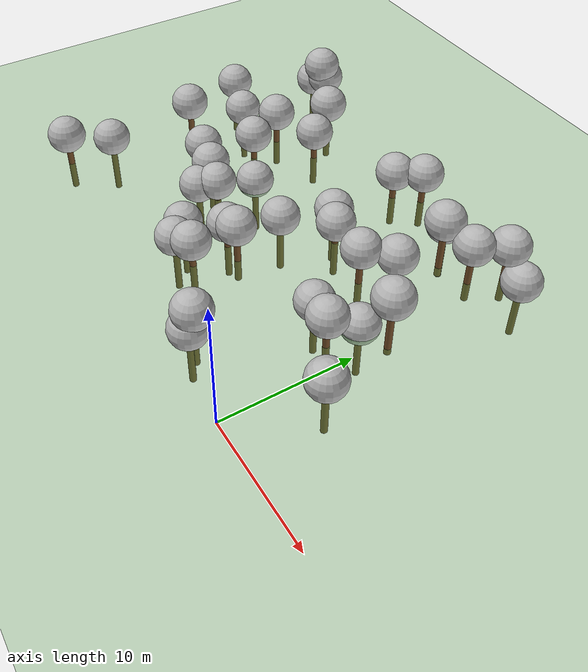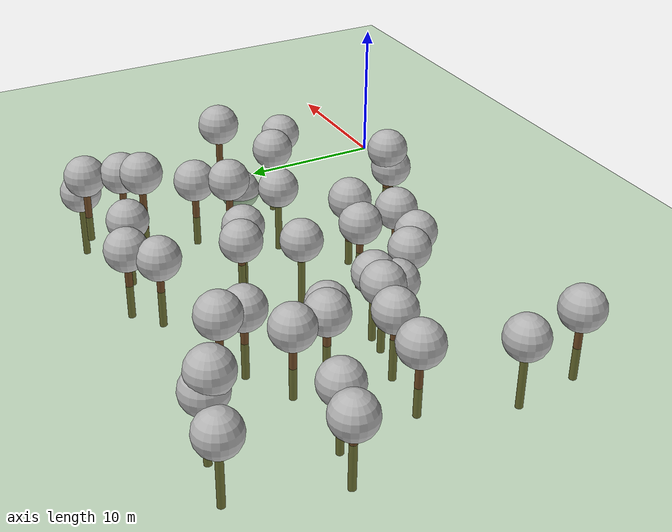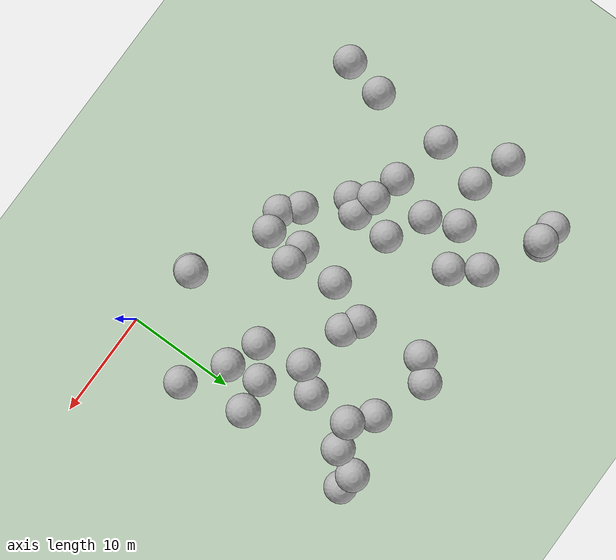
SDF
<sdf version="1.7">
 <world name="default">
  <model name="tree_simple498">
   <static>1</static>
   <link name="link">
    <pose>0 0 0.1 0 -0 0</pose>
    <collision name="collision_trunk">
     <pose>0 0 2 0 -0 0</pose>
     <geometry><cylinder><radius>0.25</radius><length>4</length></cylinder></geometry>
    </collision>
    <collision name="collision_treetop">
     <pose>0 0 5.2 0 -0 0</pose>
     <geometry><sphere><radius>1.5</radius></sphere></geometry>
    </collision>
    <visual name="trunk">
     <pose>0 0 2 0 -0 0</pose>
     <geometry><cylinder><radius>0.25</radius><length>4</length></cylinder></geometry>
     <material>
      <script>
       <uri>model://tree_simple/scripts</uri>
       <uri>model://tree_simple/materials/textures</uri>
       <name>TreeSimple/Trunk</name>
      </script>
     </material>
    </visual>
    <visual name="treetop">
     <pose>0 0 5.2 0 -0 0</pose>
     <geometry><sphere><radius>1.5</radius></sphere></geometry>
     <material>
      <script>
       <uri>model://tree_simple/scripts</uri>
       <uri>model://tree_simple/materials/textures</uri>
       <name>TreeSimple/Treetop</name>
      </script>
     </material>
    </visual>
   </link>
   <pose>-20.0621 9.09254 -3.97769 0 -0 0</pose>
  </model>
  <model name="tree_simple493">
   <static>1</static>
   <link name="link">
    <pose>0 0 0.1 0 -0 0</pose>
    <collision name="collision_trunk">
     <pose>0 0 2 0 -0 0</pose>
     <geometry><cylinder><radius>0.25</radius><length>4</length></cylinder></geometry>
    </collision>
    <collision name="collision_treetop">
     <pose>0 0 5.2 0 -0 0</pose>
     <geometry><sphere><radius>1.5</radius></sphere></geometry>
    </collision>
    <visual name="trunk">
     <pose>0 0 2 0 -0 0</pose>
     <geometry><cylinder><radius>0.25</radius><length>4</length></cylinder></geometry>
     <material>
      <script>
       <uri>model://tree_simple/scripts</uri>
       <uri>model://tree_simple/materials/textures</uri>
       <name>TreeSimple/Trunk</name>
      </script>
     </material>
    </visual>
    <visual name="treetop">
     <pose>0 0 5.2 0 -0 0</pose>
     <geometry><sphere><radius>1.5</radius></sphere></geometry>
     <material>
      <script>
       <uri>model://tree_simple/scripts</uri>
       <uri>model://tree_simple/materials/textures</uri>
       <name>TreeSimple/Treetop</name>
      </script>
     </material>
    </visual>
   </link>
   <pose>-30.9686 18.3944 -3.40292 0 -0 0</pose>
  </model>
  <model name="tree_simple488">
   <static>1</static>
   <link name="link">
    <pose>0 0 0.1 0 -0 0</pose>
    <collision name="collision_trunk">
     <pose>0 0 2 0 -0 0</pose>
     <geometry><cylinder><radius>0.25</radius><length>4</length></cylinder></geometry>
    </collision>
    <collision name="collision_treetop">
     <pose>0 0 5.2 0 -0 0</pose>
     <geometry><sphere><radius>1.5</radius></sphere></geometry>
    </collision>
    <visual name="trunk">
     <pose>0 0 2 0 -0 0</pose>
     <geometry><cylinder><radius>0.25</radius><length>4</length></cylinder></geometry>
     <material>
      <script>
       <uri>model://tree_simple/scripts</uri>
       <uri>model://tree_simple/materials/textures</uri>
       <name>TreeSimple/Trunk</name>
      </script>
     </material>
    </visual>
    <visual name="treetop">
     <pose>0 0 5.2 0 -0 0</pose>
     <geometry><sphere><radius>1.5</radius></sphere></geometry>
     <material>
      <script>
       <uri>model://tree_simple/scripts</uri>
       <uri>model://tree_simple/materials/textures</uri>
       <name>TreeSimple/Treetop</name>
      </script>
     </material>
    </visual>
   </link>
   <pose>-13.1216 12.436 -3.68606 0 -0 0</pose>
  </model>
  <model name="tree_simple480">
   <static>1</static>
   <link name="link">
    <pose>0 0 0.1 0 -0 0</pose>
    <collision name="collision_trunk">
     <pose>0 0 2 0 -0 0</pose>
     <geometry><cylinder><radius>0.25</radius><length>4</length></cylinder></geometry>
    </collision>
    <collision name="collision_treetop">
     <pose>0 0 5.2 0 -0 0</pose>
     <geometry><sphere><radius>1.5</radius></sphere></geometry>
    </collision>
    <visual name="trunk">
     <pose>0 0 2 0 -0 0</pose>
     <geometry><cylinder><radius>0.25</radius><length>4</length></cylinder></geometry>
     <material>
      <script>
       <uri>model://tree_simple/scripts</uri>
       <uri>model://tree_simple/materials/textures</uri>
       <name>TreeSimple/Trunk</name>
      </script>
     </material>
    </visual>
    <visual name="treetop">
     <pose>0 0 5.2 0 -0 0</pose>
     <geometry><sphere><radius>1.5</radius></sphere></geometry>
     <material>
      <script>
       <uri>model://tree_simple/scripts</uri>
       <uri>model://tree_simple/materials/textures</uri>
       <name>TreeSimple/Treetop</name>
      </script>
     </material>
    </visual>
   </link>
   <pose>-2.16211 12.1351 -5.1352 0 -0 0</pose>
  </model>
  <model name="tree_simple479">
   <static>1</static>
   <link name="link">
    <pose>0 0 0.1 0 -0 0</pose>
    <collision name="collision_trunk">
     <pose>0 0 2 0 -0 0</pose>
     <geometry><cylinder><radius>0.25</radius><length>4</length></cylinder></geometry>
    </collision>
    <collision name="collision_treetop">
     <pose>0 0 5.2 0 -0 0</pose>
     <geometry><sphere><radius>1.5</radius></sphere></geometry>
    </collision>
    <visual name="trunk">
     <pose>0 0 2 0 -0 0</pose>
     <geometry><cylinder><radius>0.25</radius><length>4</length></cylinder></geometry>
     <material>
      <script>
       <uri>model://tree_simple/scripts</uri>
       <uri>model://tree_simple/materials/textures</uri>
       <name>TreeSimple/Trunk</name>
      </script>
     </material>
    </visual>
    <visual name="treetop">
     <pose>0 0 5.2 0 -0 0</pose>
     <geometry><sphere><radius>1.5</radius></sphere></geometry>
     <material>
      <script>
       <uri>model://tree_simple/scripts</uri>
       <uri>model://tree_simple/materials/textures</uri>
       <name>TreeSimple/Treetop</name>
      </script>
     </material>
    </visual>
   </link>
   <pose>-12.2778 22.302 -2.8359 0 -0 0</pose>
  </model>
  <model name="tree_simple471">
   <static>1</static>
   <link name="link">
    <pose>0 0 0.1 0 -0 0</pose>
    <collision name="collision_trunk">
     <pose>0 0 2 0 -0 0</pose>
     <geometry><cylinder><radius>0.25</radius><length>4</length></cylinder></geometry>
    </collision>
    <collision name="collision_treetop">
     <pose>0 0 5.2 0 -0 0</pose>
     <geometry><sphere><radius>1.5</radius></sphere></geometry>
    </collision>
    <visual name="trunk">
     <pose>0 0 2 0 -0 0</pose>
     <geometry><cylinder><radius>0.25</radius><length>4</length></cylinder></geometry>
     <material>
      <script>
       <uri>model://tree_simple/scripts</uri>
       <uri>model://tree_simple/materials/textures</uri>
       <name>TreeSimple/Trunk</name>
      </script>
     </material>
    </visual>
    <visual name="treetop">
     <pose>0 0 5.2 0 -0 0</pose>
     <geometry><sphere><radius>1.5</radius></sphere></geometry>
     <material>
      <script>
       <uri>model://tree_simple/scripts</uri>
       <uri>model://tree_simple/materials/textures</uri>
       <name>TreeSimple/Treetop</name>
      </script>
     </material>
    </visual>
   </link>
   <pose>-4.10985 16.4703 -2.39487 0 -0 0</pose>
  </model>
  <model name="tree_simple466">
   <static>1</static>
   <link name="link">
    <pose>0 0 0.1 0 -0 0</pose>
    <collision name="collision_trunk">
     <pose>0 0 2 0 -0 0</pose>
     <geometry><cylinder><radius>0.25</radius><length>4</length></cylinder></geometry>
    </collision>
    <collision name="collision_treetop">
     <pose>0 0 5.2 0 -0 0</pose>
     <geometry><sphere><radius>1.5</radius></sphere></geometry>
    </collision>
    <visual name="trunk">
     <pose>0 0 2 0 -0 0</pose>
     <geometry><cylinder><radius>0.25</radius><length>4</length></cylinder></geometry>
     <material>
      <script>
       <uri>model://tree_simple/scripts</uri>
       <uri>model://tree_simple/materials/textures</uri>
       <name>TreeSimple/Trunk</name>
      </script>
     </material>
    </visual>
    <visual name="treetop">
     <pose>0 0 5.2 0 -0 0</pose>
     <geometry><sphere><radius>1.5</radius></sphere></geometry>
     <material>
      <script>
       <uri>model://tree_simple/scripts</uri>
       <uri>model://tree_simple/materials/textures</uri>
       <name>TreeSimple/Treetop</name>
      </script>
     </material>
    </visual>
   </link>
   <pose>-5.77987 22.1737 -3.35347 0 -0 0</pose>
  </model>
  <model name="tree_simple460">
   <static>1</static>
   <link name="link">
    <pose>0 0 0.1 0 -0 0</pose>
    <collision name="collision_trunk">
     <pose>0 0 2 0 -0 0</pose>
     <geometry><cylinder><radius>0.25</radius><length>4</length></cylinder></geometry>
    </collision>
    <collision name="collision_treetop">
     <pose>0 0 5.2 0 -0 0</pose>
     <geometry><sphere><radius>1.5</radius></sphere></geometry>
    </collision>
    <visual name="trunk">
     <pose>0 0 2 0 -0 0</pose>
     <geometry><cylinder><radius>0.25</radius><length>4</length></cylinder></geometry>
     <material>
      <script>
       <uri>model://tree_simple/scripts</uri>
       <uri>model://tree_simple/materials/textures</uri>
       <name>TreeSimple/Trunk</name>
      </script>
     </material>
    </visual>
    <visual name="treetop">
     <pose>0 0 5.2 0 -0 0</pose>
     <geometry><sphere><radius>1.5</radius></sphere></geometry>
     <material>
      <script>
       <uri>model://tree_simple/scripts</uri>
       <uri>model://tree_simple/materials/textures</uri>
       <name>TreeSimple/Treetop</name>
      </script>
     </material>
    </visual>
   </link>
   <pose>-19.1264 10.2733 -3.52867 0 -0 0</pose>
  </model>
  <model name="tree_simple453">
   <static>1</static>
   <link name="link">
    <pose>0 0 0.1 0 -0 0</pose>
    <collision name="collision_trunk">
     <pose>0 0 2 0 -0 0</pose>
     <geometry><cylinder><radius>0.25</radius><length>4</length></cylinder></geometry>
    </collision>
    <collision name="collision_treetop">
     <pose>0 0 5.2 0 -0 0</pose>
     <geometry><sphere><radius>1.5</radius></sphere></geometry>
    </collision>
    <visual name="trunk">
     <pose>0 0 2 0 -0 0</pose>
     <geometry><cylinder><radius>0.25</radius><length>4</length></cylinder></geometry>
     <material>
      <script>
       <uri>model://tree_simple/scripts</uri>
       <uri>model://tree_simple/materials/textures</uri>
       <name>TreeSimple/Trunk</name>
      </script>
     </material>
    </visual>
    <visual name="treetop">
     <pose>0 0 5.2 0 -0 0</pose>
     <geometry><sphere><radius>1.5</radius></sphere></geometry>
     <material>
      <script>
       <uri>model://tree_simple/scripts</uri>
       <uri>model://tree_simple/materials/textures</uri>
       <name>TreeSimple/Treetop</name>
      </script>
     </material>
    </visual>
   </link>
   <pose>-12.1353 8.19022 -2.05042 0 -0 0</pose>
  </model>
  <model name="tree_simple444">
   <static>1</static>
   <link name="link">
    <pose>0 0 0.1 0 -0 0</pose>
    <collision name="collision_trunk">
     <pose>0 0 2 0 -0 0</pose>
     <geometry><cylinder><radius>0.25</radius><length>4</length></cylinder></geometry>
    </collision>
    <collision name="collision_treetop">
     <pose>0 0 5.2 0 -0 0</pose>
     <geometry><sphere><radius>1.5</radius></sphere></geometry>
    </collision>
    <visual name="trunk">
     <pose>0 0 2 0 -0 0</pose>
     <geometry><cylinder><radius>0.25</radius><length>4</length></cylinder></geometry>
     <material>
      <script>
       <uri>model://tree_simple/scripts</uri>
       <uri>model://tree_simple/materials/textures</uri>
       <name>TreeSimple/Trunk</name>
      </script>
     </material>
    </visual>
    <visual name="treetop">
     <pose>0 0 5.2 0 -0 0</pose>
     <geometry><sphere><radius>1.5</radius></sphere></geometry>
     <material>
      <script>
       <uri>model://tree_simple/scripts</uri>
       <uri>model://tree_simple/materials/textures</uri>
       <name>TreeSimple/Treetop</name>
      </script>
     </material>
    </visual>
   </link>
   <pose>-23.7376 11.4826 -3.24475 0 -0 0</pose>
  </model>
  <model name="tree_simple442">
   <static>1</static>
   <link name="link">
    <pose>0 0 0.1 0 -0 0</pose>
    <collision name="collision_trunk">
     <pose>0 0 2 0 -0 0</pose>
     <geometry><cylinder><radius>0.25</radius><length>4</length></cylinder></geometry>
    </collision>
    <collision name="collision_treetop">
     <pose>0 0 5.2 0 -0 0</pose>
     <geometry><sphere><radius>1.5</radius></sphere></geometry>
    </collision>
    <visual name="trunk">
     <pose>0 0 2 0 -0 0</pose>
     <geometry><cylinder><radius>0.25</radius><length>4</length></cylinder></geometry>
     <material>
      <script>
       <uri>model://tree_simple/scripts</uri>
       <uri>model://tree_simple/materials/textures</uri>
       <name>TreeSimple/Trunk</name>
      </script>
     </material>
    </visual>
    <visual name="treetop">
     <pose>0 0 5.2 0 -0 0</pose>
     <geometry><sphere><radius>1.5</radius></sphere></geometry>
     <material>
      <script>
       <uri>model://tree_simple/scripts</uri>
       <uri>model://tree_simple/materials/textures</uri>
       <name>TreeSimple/Treetop</name>
      </script>
     </material>
    </visual>
   </link>
   <pose>-1.68249 21.1094 -1.81407 0 -0 0</pose>
  </model>
  <model name="tree_simple424">
   <static>1</static>
   <link name="link">
    <pose>0 0 0.1 0 -0 0</pose>
    <collision name="collision_trunk">
     <pose>0 0 2 0 -0 0</pose>
     <geometry><cylinder><radius>0.25</radius><length>4</length></cylinder></geometry>
    </collision>
    <collision name="collision_treetop">
     <pose>0 0 5.2 0 -0 0</pose>
     <geometry><sphere><radius>1.5</radius></sphere></geometry>
    </collision>
    <visual name="trunk">
     <pose>0 0 2 0 -0 0</pose>
     <geometry><cylinder><radius>0.25</radius><length>4</length></cylinder></geometry>
     <material>
      <script>
       <uri>model://tree_simple/scripts</uri>
       <uri>model://tree_simple/materials/textures</uri>
       <name>TreeSimple/Trunk</name>
      </script>
     </material>
    </visual>
    <visual name="treetop">
     <pose>0 0 5.2 0 -0 0</pose>
     <geometry><sphere><radius>1.5</radius></sphere></geometry>
     <material>
      <script>
       <uri>model://tree_simple/scripts</uri>
       <uri>model://tree_simple/materials/textures</uri>
       <name>TreeSimple/Treetop</name>
      </script>
     </material>
    </visual>
   </link>
   <pose>-16.7771 6.12179 -4.10193 0 -0 0</pose>
  </model>
  <model name="tree_simple417">
   <static>1</static>
   <link name="link">
    <pose>0 0 0.1 0 -0 0</pose>
    <collision name="collision_trunk">
     <pose>0 0 2 0 -0 0</pose>
     <geometry><cylinder><radius>0.25</radius><length>4</length></cylinder></geometry>
    </collision>
    <collision name="collision_treetop">
     <pose>0 0 5.2 0 -0 0</pose>
     <geometry><sphere><radius>1.5</radius></sphere></geometry>
    </collision>
    <visual name="trunk">
     <pose>0 0 2 0 -0 0</pose>
     <geometry><cylinder><radius>0.25</radius><length>4</length></cylinder></geometry>
     <material>
      <script>
       <uri>model://tree_simple/scripts</uri>
       <uri>model://tree_simple/materials/textures</uri>
       <name>TreeSimple/Trunk</name>
      </script>
     </material>
    </visual>
    <visual name="treetop">
     <pose>0 0 5.2 0 -0 0</pose>
     <geometry><sphere><radius>1.5</radius></sphere></geometry>
     <material>
      <script>
       <uri>model://tree_simple/scripts</uri>
       <uri>model://tree_simple/materials/textures</uri>
       <name>TreeSimple/Treetop</name>
      </script>
     </material>
    </visual>
   </link>
   <pose>-1.82311 9.17527 -2.47973 0 -0 0</pose>
  </model>
  <model name="tree_simple412">
   <static>1</static>
   <link name="link">
    <pose>0 0 0.1 0 -0 0</pose>
    <collision name="collision_trunk">
     <pose>0 0 2 0 -0 0</pose>
     <geometry><cylinder><radius>0.25</radius><length>4</length></cylinder></geometry>
    </collision>
    <collision name="collision_treetop">
     <pose>0 0 5.2 0 -0 0</pose>
     <geometry><sphere><radius>1.5</radius></sphere></geometry>
    </collision>
    <visual name="trunk">
     <pose>0 0 2 0 -0 0</pose>
     <geometry><cylinder><radius>0.25</radius><length>4</length></cylinder></geometry>
     <material>
      <script>
       <uri>model://tree_simple/scripts</uri>
       <uri>model://tree_simple/materials/textures</uri>
       <name>TreeSimple/Trunk</name>
      </script>
     </material>
    </visual>
    <visual name="treetop">
     <pose>0 0 5.2 0 -0 0</pose>
     <geometry><sphere><radius>1.5</radius></sphere></geometry>
     <material>
      <script>
       <uri>model://tree_simple/scripts</uri>
       <uri>model://tree_simple/materials/textures</uri>
       <name>TreeSimple/Treetop</name>
      </script>
     </material>
    </visual>
   </link>
   <pose>1.94235 6.68973 -3.29989 0 -0 0</pose>
  </model>
  <model name="tree_simple393">
   <static>1</static>
   <link name="link">
    <pose>0 0 0.1 0 -0 0</pose>
    <collision name="collision_trunk">
     <pose>0 0 2 0 -0 0</pose>
     <geometry><cylinder><radius>0.25</radius><length>4</length></cylinder></geometry>
    </collision>
    <collision name="collision_treetop">
     <pose>0 0 5.2 0 -0 0</pose>
     <geometry><sphere><radius>1.5</radius></sphere></geometry>
    </collision>
    <visual name="trunk">
     <pose>0 0 2 0 -0 0</pose>
     <geometry><cylinder><radius>0.25</radius><length>4</length></cylinder></geometry>
     <material>
      <script>
       <uri>model://tree_simple/scripts</uri>
       <uri>model://tree_simple/materials/textures</uri>
       <name>TreeSimple/Trunk</name>
      </script>
     </material>
    </visual>
    <visual name="treetop">
     <pose>0 0 5.2 0 -0 0</pose>
     <geometry><sphere><radius>1.5</radius></sphere></geometry>
     <material>
      <script>
       <uri>model://tree_simple/scripts</uri>
       <uri>model://tree_simple/materials/textures</uri>
       <name>TreeSimple/Treetop</name>
      </script>
     </material>
    </visual>
   </link>
   <pose>-19.2161 13.7179 -4.79969 0 -0 0</pose>
  </model>
  <model name="tree_simple360">
   <static>1</static>
   <link name="link">
    <pose>0 0 0.1 0 -0 0</pose>
    <collision name="collision_trunk">
     <pose>0 0 2 0 -0 0</pose>
     <geometry><cylinder><radius>0.25</radius><length>4</length></cylinder></geometry>
    </collision>
    <collision name="collision_treetop">
     <pose>0 0 5.2 0 -0 0</pose>
     <geometry><sphere><radius>1.5</radius></sphere></geometry>
    </collision>
    <visual name="trunk">
     <pose>0 0 2 0 -0 0</pose>
     <geometry><cylinder><radius>0.25</radius><length>4</length></cylinder></geometry>
     <material>
      <script>
       <uri>model://tree_simple/scripts</uri>
       <uri>model://tree_simple/materials/textures</uri>
       <name>TreeSimple/Trunk</name>
      </script>
     </material>
    </visual>
    <visual name="treetop">
     <pose>0 0 5.2 0 -0 0</pose>
     <geometry><sphere><radius>1.5</radius></sphere></geometry>
     <material>
      <script>
       <uri>model://tree_simple/scripts</uri>
       <uri>model://tree_simple/materials/textures</uri>
       <name>TreeSimple/Treetop</name>
      </script>
     </material>
    </visual>
   </link>
   <pose>-13.8762 8.30703 -3.04512 0 -0 0</pose>
  </model>
  <model name="tree_simple351">
   <static>1</static>
   <link name="link">
    <pose>0 0 0.1 0 -0 0</pose>
    <collision name="collision_trunk">
     <pose>0 0 2 0 -0 0</pose>
     <geometry><cylinder><radius>0.25</radius><length>4</length></cylinder></geometry>
    </collision>
    <collision name="collision_treetop">
     <pose>0 0 5.2 0 -0 0</pose>
     <geometry><sphere><radius>1.5</radius></sphere></geometry>
    </collision>
    <visual name="trunk">
     <pose>0 0 2 0 -0 0</pose>
     <geometry><cylinder><radius>0.25</radius><length>4</length></cylinder></geometry>
     <material>
      <script>
       <uri>model://tree_simple/scripts</uri>
       <uri>model://tree_simple/materials/textures</uri>
       <name>TreeSimple/Trunk</name>
      </script>
     </material>
    </visual>
    <visual name="treetop">
     <pose>0 0 5.2 0 -0 0</pose>
     <geometry><sphere><radius>1.5</radius></sphere></geometry>
     <material>
      <script>
       <uri>model://tree_simple/scripts</uri>
       <uri>model://tree_simple/materials/textures</uri>
       <name>TreeSimple/Treetop</name>
      </script>
     </material>
    </visual>
   </link>
   <pose>-28.4629 25.1782 -3.87333 0 -0 0</pose>
  </model>
  <model name="tree_simple338">
   <static>1</static>
   <link name="link">
    <pose>0 0 0.1 0 -0 0</pose>
    <collision name="collision_trunk">
     <pose>0 0 2 0 -0 0</pose>
     <geometry><cylinder><radius>0.25</radius><length>4</length></cylinder></geometry>
    </collision>
    <collision name="collision_treetop">
     <pose>0 0 5.2 0 -0 0</pose>
     <geometry><sphere><radius>1.5</radius></sphere></geometry>
    </collision>
    <visual name="trunk">
     <pose>0 0 2 0 -0 0</pose>
     <geometry><cylinder><radius>0.25</radius><length>4</length></cylinder></geometry>
     <material>
      <script>
       <uri>model://tree_simple/scripts</uri>
       <uri>model://tree_simple/materials/textures</uri>
       <name>TreeSimple/Trunk</name>
      </script>
     </material>
    </visual>
    <visual name="treetop">
     <pose>0 0 5.2 0 -0 0</pose>
     <geometry><sphere><radius>1.5</radius></sphere></geometry>
     <material>
      <script>
       <uri>model://tree_simple/scripts</uri>
       <uri>model://tree_simple/materials/textures</uri>
       <name>TreeSimple/Treetop</name>
      </script>
     </material>
    </visual>
   </link>
   <pose>-22.4236 15.4466 -2.96545 0 -0 0</pose>
  </model>
  <model name="tree_simple282">
   <static>1</static>
   <link name="link">
    <pose>0 0 0.1 0 -0 0</pose>
    <collision name="collision_trunk">
     <pose>0 0 2 0 -0 0</pose>
     <geometry><cylinder><radius>0.25</radius><length>4</length></cylinder></geometry>
    </collision>
    <collision name="collision_treetop">
     <pose>0 0 5.2 0 -0 0</pose>
     <geometry><sphere><radius>1.5</radius></sphere></geometry>
    </collision>
    <visual name="trunk">
     <pose>0 0 2 0 -0 0</pose>
     <geometry><cylinder><radius>0.25</radius><length>4</length></cylinder></geometry>
     <material>
      <script>
       <uri>model://tree_simple/scripts</uri>
       <uri>model://tree_simple/materials/textures</uri>
       <name>TreeSimple/Trunk</name>
      </script>
     </material>
    </visual>
    <visual name="treetop">
     <pose>0 0 5.2 0 -0 0</pose>
     <geometry><sphere><radius>1.5</radius></sphere></geometry>
     <material>
      <script>
       <uri>model://tree_simple/scripts</uri>
       <uri>model://tree_simple/materials/textures</uri>
       <name>TreeSimple/Treetop</name>
      </script>
     </material>
    </visual>
   </link>
   <pose>-10.1167 15.3935 -3.35605 0 -0 0</pose>
  </model>
  <model name="tree_simple251">
   <static>1</static>
   <link name="link">
    <pose>0 0 0.1 0 -0 0</pose>
    <collision name="collision_trunk">
     <pose>0 0 2 0 -0 0</pose>
     <geometry><cylinder><radius>0.25</radius><length>4</length></cylinder></geometry>
    </collision>
    <collision name="collision_treetop">
     <pose>0 0 5.2 0 -0 0</pose>
     <geometry><sphere><radius>1.5</radius></sphere></geometry>
    </collision>
    <visual name="trunk">
     <pose>0 0 2 0 -0 0</pose>
     <geometry><cylinder><radius>0.25</radius><length>4</length></cylinder></geometry>
     <material>
      <script>
       <uri>model://tree_simple/scripts</uri>
       <uri>model://tree_simple/materials/textures</uri>
       <name>TreeSimple/Trunk</name>
      </script>
     </material>
    </visual>
    <visual name="treetop">
     <pose>0 0 5.2 0 -0 0</pose>
     <geometry><sphere><radius>1.5</radius></sphere></geometry>
     <material>
      <script>
       <uri>model://tree_simple/scripts</uri>
       <uri>model://tree_simple/materials/textures</uri>
       <name>TreeSimple/Treetop</name>
      </script>
     </material>
    </visual>
   </link>
   <pose>-19.9479 19.7977 -2.8009 0 -0 0</pose>
  </model>
  <model name="tree_simple232">
   <static>1</static>
   <link name="link">
    <pose>0 0 0.1 0 -0 0</pose>
    <collision name="collision_trunk">
     <pose>0 0 2 0 -0 0</pose>
     <geometry><cylinder><radius>0.25</radius><length>4</length></cylinder></geometry>
    </collision>
    <collision name="collision_treetop">
     <pose>0 0 5.2 0 -0 0</pose>
     <geometry><sphere><radius>1.5</radius></sphere></geometry>
    </collision>
    <visual name="trunk">
     <pose>0 0 2 0 -0 0</pose>
     <geometry><cylinder><radius>0.25</radius><length>4</length></cylinder></geometry>
     <material>
      <script>
       <uri>model://tree_simple/scripts</uri>
       <uri>model://tree_simple/materials/textures</uri>
       <name>TreeSimple/Trunk</name>
      </script>
     </material>
    </visual>
    <visual name="treetop">
     <pose>0 0 5.2 0 -0 0</pose>
     <geometry><sphere><radius>1.5</radius></sphere></geometry>
     <material>
      <script>
       <uri>model://tree_simple/scripts</uri>
       <uri>model://tree_simple/materials/textures</uri>
       <name>TreeSimple/Treetop</name>
      </script>
     </material>
    </visual>
   </link>
   <pose>-11.6358 16.2362 -3.50411 0 -0 0</pose>
  </model>
  <model name="tree_simple228">
   <static>1</static>
   <link name="link">
    <pose>0 0 0.1 0 -0 0</pose>
    <collision name="collision_trunk">
     <pose>0 0 2 0 -0 0</pose>
     <geometry><cylinder><radius>0.25</radius><length>4</length></cylinder></geometry>
    </collision>
    <collision name="collision_treetop">
     <pose>0 0 5.2 0 -0 0</pose>
     <geometry><sphere><radius>1.5</radius></sphere></geometry>
    </collision>
    <visual name="trunk">
     <pose>0 0 2 0 -0 0</pose>
     <geometry><cylinder><radius>0.25</radius><length>4</length></cylinder></geometry>
     <material>
      <script>
       <uri>model://tree_simple/scripts</uri>
       <uri>model://tree_simple/materials/textures</uri>
       <name>TreeSimple/Trunk</name>
      </script>
     </material>
    </visual>
    <visual name="treetop">
     <pose>0 0 5.2 0 -0 0</pose>
     <geometry><sphere><radius>1.5</radius></sphere></geometry>
     <material>
      <script>
       <uri>model://tree_simple/scripts</uri>
       <uri>model://tree_simple/materials/textures</uri>
       <name>TreeSimple/Treetop</name>
      </script>
     </material>
    </visual>
   </link>
   <pose>-28.4417 12.6792 -2.27526 0 -0 0</pose>
  </model>
  <model name="tree_simple226">
   <static>1</static>
   <link name="link">
    <pose>0 0 0.1 0 -0 0</pose>
    <collision name="collision_trunk">
     <pose>0 0 2 0 -0 0</pose>
     <geometry><cylinder><radius>0.25</radius><length>4</length></cylinder></geometry>
    </collision>
    <collision name="collision_treetop">
     <pose>0 0 5.2 0 -0 0</pose>
     <geometry><sphere><radius>1.5</radius></sphere></geometry>
    </collision>
    <visual name="trunk">
     <pose>0 0 2 0 -0 0</pose>
     <geometry><cylinder><radius>0.25</radius><length>4</length></cylinder></geometry>
     <material>
      <script>
       <uri>model://tree_simple/scripts</uri>
       <uri>model://tree_simple/materials/textures</uri>
       <name>TreeSimple/Trunk</name>
      </script>
     </material>
    </visual>
    <visual name="treetop">
     <pose>0 0 5.2 0 -0 0</pose>
     <geometry><sphere><radius>1.5</radius></sphere></geometry>
     <material>
      <script>
       <uri>model://tree_simple/scripts</uri>
       <uri>model://tree_simple/materials/textures</uri>
       <name>TreeSimple/Treetop</name>
      </script>
     </material>
    </visual>
   </link>
   <pose>-15.3499 4.73407 -3.88466 0 -0 0</pose>
  </model>
  <model name="tree_simple187">
   <static>1</static>
   <link name="link">
    <pose>0 0 0.1 0 -0 0</pose>
    <collision name="collision_trunk">
     <pose>0 0 2 0 -0 0</pose>
     <geometry><cylinder><radius>0.25</radius><length>4</length></cylinder></geometry>
    </collision>
    <collision name="collision_treetop">
     <pose>0 0 5.2 0 -0 0</pose>
     <geometry><sphere><radius>1.5</radius></sphere></geometry>
    </collision>
    <visual name="trunk">
     <pose>0 0 2 0 -0 0</pose>
     <geometry><cylinder><radius>0.25</radius><length>4</length></cylinder></geometry>
     <material>
      <script>
       <uri>model://tree_simple/scripts</uri>
       <uri>model://tree_simple/materials/textures</uri>
       <name>TreeSimple/Trunk</name>
      </script>
     </material>
    </visual>
    <visual name="treetop">
     <pose>0 0 5.2 0 -0 0</pose>
     <geometry><sphere><radius>1.5</radius></sphere></geometry>
     <material>
      <script>
       <uri>model://tree_simple/scripts</uri>
       <uri>model://tree_simple/materials/textures</uri>
       <name>TreeSimple/Treetop</name>
      </script>
     </material>
    </visual>
   </link>
   <pose>-6.45554 1.79141 -2.12189 0 -0 0</pose>
  </model>
  <model name="tree_simple186">
   <static>1</static>
   <link name="link">
    <pose>0 0 0.1 0 -0 0</pose>
    <collision name="collision_trunk">
     <pose>0 0 2 0 -0 0</pose>
     <geometry><cylinder><radius>0.25</radius><length>4</length></cylinder></geometry>
    </collision>
    <collision name="collision_treetop">
     <pose>0 0 5.2 0 -0 0</pose>
     <geometry><sphere><radius>1.5</radius></sphere></geometry>
    </collision>
    <visual name="trunk">
     <pose>0 0 2 0 -0 0</pose>
     <geometry><cylinder><radius>0.25</radius><length>4</length></cylinder></geometry>
     <material>
      <script>
       <uri>model://tree_simple/scripts</uri>
       <uri>model://tree_simple/materials/textures</uri>
       <name>TreeSimple/Trunk</name>
      </script>
     </material>
    </visual>
    <visual name="treetop">
     <pose>0 0 5.2 0 -0 0</pose>
     <geometry><sphere><radius>1.5</radius></sphere></geometry>
     <material>
      <script>
       <uri>model://tree_simple/scripts</uri>
       <uri>model://tree_simple/materials/textures</uri>
       <name>TreeSimple/Treetop</name>
      </script>
     </material>
    </visual>
   </link>
   <pose>-26.4394 24.6667 -1.36004 0 -0 0</pose>
  </model>
  <model name="tree_simple175">
   <static>1</static>
   <link name="link">
    <pose>0 0 0.1 0 -0 0</pose>
    <collision name="collision_trunk">
     <pose>0 0 2 0 -0 0</pose>
     <geometry><cylinder><radius>0.25</radius><length>4</length></cylinder></geometry>
    </collision>
    <collision name="collision_treetop">
     <pose>0 0 5.2 0 -0 0</pose>
     <geometry><sphere><radius>1.5</radius></sphere></geometry>
    </collision>
    <visual name="trunk">
     <pose>0 0 2 0 -0 0</pose>
     <geometry><cylinder><radius>0.25</radius><length>4</length></cylinder></geometry>
     <material>
      <script>
       <uri>model://tree_simple/scripts</uri>
       <uri>model://tree_simple/materials/textures</uri>
       <name>TreeSimple/Trunk</name>
      </script>
     </material>
    </visual>
    <visual name="treetop">
     <pose>0 0 5.2 0 -0 0</pose>
     <geometry><sphere><radius>1.5</radius></sphere></geometry>
     <material>
      <script>
       <uri>model://tree_simple/scripts</uri>
       <uri>model://tree_simple/materials/textures</uri>
       <name>TreeSimple/Treetop</name>
      </script>
     </material>
    </visual>
   </link>
   <pose>-0.556108 23.4554 -2.05688 0 -0 0</pose>
  </model>
  <model name="tree_simple174">
   <static>1</static>
   <link name="link">
    <pose>0 0 0.1 0 -0 0</pose>
    <collision name="collision_trunk">
     <pose>0 0 2 0 -0 0</pose>
     <geometry><cylinder><radius>0.25</radius><length>4</length></cylinder></geometry>
    </collision>
    <collision name="collision_treetop">
     <pose>0 0 5.2 0 -0 0</pose>
     <geometry><sphere><radius>1.5</radius></sphere></geometry>
    </collision>
    <visual name="trunk">
     <pose>0 0 2 0 -0 0</pose>
     <geometry><cylinder><radius>0.25</radius><length>4</length></cylinder></geometry>
     <material>
      <script>
       <uri>model://tree_simple/scripts</uri>
       <uri>model://tree_simple/materials/textures</uri>
       <name>TreeSimple/Trunk</name>
      </script>
     </material>
    </visual>
    <visual name="treetop">
     <pose>0 0 5.2 0 -0 0</pose>
     <geometry><sphere><radius>1.5</radius></sphere></geometry>
     <material>
      <script>
       <uri>model://tree_simple/scripts</uri>
       <uri>model://tree_simple/materials/textures</uri>
       <name>TreeSimple/Treetop</name>
      </script>
     </material>
    </visual>
   </link>
   <pose>-26.3634 25.0273 -2.59182 0 -0 0</pose>
  </model>
  <model name="tree_simple165">
   <static>1</static>
   <link name="link">
    <pose>0 0 0.1 0 -0 0</pose>
    <collision name="collision_trunk">
     <pose>0 0 2 0 -0 0</pose>
     <geometry><cylinder><radius>0.25</radius><length>4</length></cylinder></geometry>
    </collision>
    <collision name="collision_treetop">
     <pose>0 0 5.2 0 -0 0</pose>
     <geometry><sphere><radius>1.5</radius></sphere></geometry>
    </collision>
    <visual name="trunk">
     <pose>0 0 2 0 -0 0</pose>
     <geometry><cylinder><radius>0.25</radius><length>4</length></cylinder></geometry>
     <material>
      <script>
       <uri>model://tree_simple/scripts</uri>
       <uri>model://tree_simple/materials/textures</uri>
       <name>TreeSimple/Trunk</name>
      </script>
     </material>
    </visual>
    <visual name="treetop">
     <pose>0 0 5.2 0 -0 0</pose>
     <geometry><sphere><radius>1.5</radius></sphere></geometry>
     <material>
      <script>
       <uri>model://tree_simple/scripts</uri>
       <uri>model://tree_simple/materials/textures</uri>
       <name>TreeSimple/Treetop</name>
      </script>
     </material>
    </visual>
   </link>
   <pose>-6.47666 1.43781 -3.68757 0 -0 0</pose>
  </model>
  <model name="tree_simple163">
   <static>1</static>
   <link name="link">
    <pose>0 0 0.1 0 -0 0</pose>
    <collision name="collision_trunk">
     <pose>0 0 2 0 -0 0</pose>
     <geometry><cylinder><radius>0.25</radius><length>4</length></cylinder></geometry>
    </collision>
    <collision name="collision_treetop">
     <pose>0 0 5.2 0 -0 0</pose>
     <geometry><sphere><radius>1.5</radius></sphere></geometry>
    </collision>
    <visual name="trunk">
     <pose>0 0 2 0 -0 0</pose>
     <geometry><cylinder><radius>0.25</radius><length>4</length></cylinder></geometry>
     <material>
      <script>
       <uri>model://tree_simple/scripts</uri>
       <uri>model://tree_simple/materials/textures</uri>
       <name>TreeSimple/Trunk</name>
      </script>
     </material>
    </visual>
    <visual name="treetop">
     <pose>0 0 5.2 0 -0 0</pose>
     <geometry><sphere><radius>1.5</radius></sphere></geometry>
     <material>
      <script>
       <uri>model://tree_simple/scripts</uri>
       <uri>model://tree_simple/materials/textures</uri>
       <name>TreeSimple/Treetop</name>
      </script>
     </material>
    </visual>
   </link>
   <pose>-21.1018 10.7784 -3.05358 0 -0 0</pose>
  </model>
  <model name="tree_simple162">
   <static>1</static>
   <link name="link">
    <pose>0 0 0.1 0 -0 0</pose>
    <collision name="collision_trunk">
     <pose>0 0 2 0 -0 0</pose>
     <geometry><cylinder><radius>0.25</radius><length>4</length></cylinder></geometry>
    </collision>
    <collision name="collision_treetop">
     <pose>0 0 5.2 0 -0 0</pose>
     <geometry><sphere><radius>1.5</radius></sphere></geometry>
    </collision>
    <visual name="trunk">
     <pose>0 0 2 0 -0 0</pose>
     <geometry><cylinder><radius>0.25</radius><length>4</length></cylinder></geometry>
     <material>
      <script>
       <uri>model://tree_simple/scripts</uri>
       <uri>model://tree_simple/materials/textures</uri>
       <name>TreeSimple/Trunk</name>
      </script>
     </material>
    </visual>
    <visual name="treetop">
     <pose>0 0 5.2 0 -0 0</pose>
     <geometry><sphere><radius>1.5</radius></sphere></geometry>
     <material>
      <script>
       <uri>model://tree_simple/scripts</uri>
       <uri>model://tree_simple/materials/textures</uri>
       <name>TreeSimple/Treetop</name>
      </script>
     </material>
    </visual>
   </link>
   <pose>-29.0785 5.63251 -3.74928 0 -0 0</pose>
  </model>
  <model name="tree_simple158">
   <static>1</static>
   <link name="link">
    <pose>0 0 0.1 0 -0 0</pose>
    <collision name="collision_trunk">
     <pose>0 0 2 0 -0 0</pose>
     <geometry><cylinder><radius>0.25</radius><length>4</length></cylinder></geometry>
    </collision>
    <collision name="collision_treetop">
     <pose>0 0 5.2 0 -0 0</pose>
     <geometry><sphere><radius>1.5</radius></sphere></geometry>
    </collision>
    <visual name="trunk">
     <pose>0 0 2 0 -0 0</pose>
     <geometry><cylinder><radius>0.25</radius><length>4</length></cylinder></geometry>
     <material>
      <script>
       <uri>model://tree_simple/scripts</uri>
       <uri>model://tree_simple/materials/textures</uri>
       <name>TreeSimple/Trunk</name>
      </script>
     </material>
    </visual>
    <visual name="treetop">
     <pose>0 0 5.2 0 -0 0</pose>
     <geometry><sphere><radius>1.5</radius></sphere></geometry>
     <material>
      <script>
       <uri>model://tree_simple/scripts</uri>
       <uri>model://tree_simple/materials/textures</uri>
       <name>TreeSimple/Treetop</name>
      </script>
     </material>
    </visual>
   </link>
   <pose>-5.68102 14.4729 -2.08893 0 -0 0</pose>
  </model>
  <model name="tree_simple135">
   <static>1</static>
   <link name="link">
    <pose>0 0 0.1 0 -0 0</pose>
    <collision name="collision_trunk">
     <pose>0 0 2 0 -0 0</pose>
     <geometry><cylinder><radius>0.25</radius><length>4</length></cylinder></geometry>
    </collision>
    <collision name="collision_treetop">
     <pose>0 0 5.2 0 -0 0</pose>
     <geometry><sphere><radius>1.5</radius></sphere></geometry>
    </collision>
    <visual name="trunk">
     <pose>0 0 2 0 -0 0</pose>
     <geometry><cylinder><radius>0.25</radius><length>4</length></cylinder></geometry>
     <material>
      <script>
       <uri>model://tree_simple/scripts</uri>
       <uri>model://tree_simple/materials/textures</uri>
       <name>TreeSimple/Trunk</name>
      </script>
     </material>
    </visual>
    <visual name="treetop">
     <pose>0 0 5.2 0 -0 0</pose>
     <geometry><sphere><radius>1.5</radius></sphere></geometry>
     <material>
      <script>
       <uri>model://tree_simple/scripts</uri>
       <uri>model://tree_simple/materials/textures</uri>
       <name>TreeSimple/Treetop</name>
      </script>
     </material>
    </visual>
   </link>
   <pose>-29.5483 2.06641 -2.49086 0 -0 0</pose>
  </model>
  <model name="tree_simple130">
   <static>1</static>
   <link name="link">
    <pose>0 0 0.1 0 -0 0</pose>
    <collision name="collision_trunk">
     <pose>0 0 2 0 -0 0</pose>
     <geometry><cylinder><radius>0.25</radius><length>4</length></cylinder></geometry>
    </collision>
    <collision name="collision_treetop">
     <pose>0 0 5.2 0 -0 0</pose>
     <geometry><sphere><radius>1.5</radius></sphere></geometry>
    </collision>
    <visual name="trunk">
     <pose>0 0 2 0 -0 0</pose>
     <geometry><cylinder><radius>0.25</radius><length>4</length></cylinder></geometry>
     <material>
      <script>
       <uri>model://tree_simple/scripts</uri>
       <uri>model://tree_simple/materials/textures</uri>
       <name>TreeSimple/Trunk</name>
      </script>
     </material>
    </visual>
    <visual name="treetop">
     <pose>0 0 5.2 0 -0 0</pose>
     <geometry><sphere><radius>1.5</radius></sphere></geometry>
     <material>
      <script>
       <uri>model://tree_simple/scripts</uri>
       <uri>model://tree_simple/materials/textures</uri>
       <name>TreeSimple/Treetop</name>
      </script>
     </material>
    </visual>
   </link>
   <pose>-4.79782 10.1485 -4.18552 0 -0 0</pose>
  </model>
  <model name="tree_simple119">
   <static>1</static>
   <link name="link">
    <pose>0 0 0.1 0 -0 0</pose>
    <collision name="collision_trunk">
     <pose>0 0 2 0 -0 0</pose>
     <geometry><cylinder><radius>0.25</radius><length>4</length></cylinder></geometry>
    </collision>
    <collision name="collision_treetop">
     <pose>0 0 5.2 0 -0 0</pose>
     <geometry><sphere><radius>1.5</radius></sphere></geometry>
    </collision>
    <visual name="trunk">
     <pose>0 0 2 0 -0 0</pose>
     <geometry><cylinder><radius>0.25</radius><length>4</length></cylinder></geometry>
     <material>
      <script>
       <uri>model://tree_simple/scripts</uri>
       <uri>model://tree_simple/materials/textures</uri>
       <name>TreeSimple/Trunk</name>
      </script>
     </material>
    </visual>
    <visual name="treetop">
     <pose>0 0 5.2 0 -0 0</pose>
     <geometry><sphere><radius>1.5</radius></sphere></geometry>
     <material>
      <script>
       <uri>model://tree_simple/scripts</uri>
       <uri>model://tree_simple/materials/textures</uri>
       <name>TreeSimple/Treetop</name>
      </script>
     </material>
    </visual>
   </link>
   <pose>-27.5998 17.3076 -3.92599 0 -0 0</pose>
  </model>
  <model name="tree_simple103">
   <static>1</static>
   <link name="link">
    <pose>0 0 0.1 0 -0 0</pose>
    <collision name="collision_trunk">
     <pose>0 0 2 0 -0 0</pose>
     <geometry><cylinder><radius>0.25</radius><length>4</length></cylinder></geometry>
    </collision>
    <collision name="collision_treetop">
     <pose>0 0 5.2 0 -0 0</pose>
     <geometry><sphere><radius>1.5</radius></sphere></geometry>
    </collision>
    <visual name="trunk">
     <pose>0 0 2 0 -0 0</pose>
     <geometry><cylinder><radius>0.25</radius><length>4</length></cylinder></geometry>
     <material>
      <script>
       <uri>model://tree_simple/scripts</uri>
       <uri>model://tree_simple/materials/textures</uri>
       <name>TreeSimple/Trunk</name>
      </script>
     </material>
    </visual>
    <visual name="treetop">
     <pose>0 0 5.2 0 -0 0</pose>
     <geometry><sphere><radius>1.5</radius></sphere></geometry>
     <material>
      <script>
       <uri>model://tree_simple/scripts</uri>
       <uri>model://tree_simple/materials/textures</uri>
       <name>TreeSimple/Treetop</name>
      </script>
     </material>
    </visual>
   </link>
   <pose>-23.5128 18.2921 -2.43602 0 -0 0</pose>
  </model>
  <model name="tree_simple86">
   <static>1</static>
   <link name="link">
    <pose>0 0 0.1 0 -0 0</pose>
    <collision name="collision_trunk">
     <pose>0 0 2 0 -0 0</pose>
     <geometry><cylinder><radius>0.25</radius><length>4</length></cylinder></geometry>
    </collision>
    <collision name="collision_treetop">
     <pose>0 0 5.2 0 -0 0</pose>
     <geometry><sphere><radius>1.5</radius></sphere></geometry>
    </collision>
    <visual name="trunk">
     <pose>0 0 2 0 -0 0</pose>
     <geometry><cylinder><radius>0.25</radius><length>4</length></cylinder></geometry>
     <material>
      <script>
       <uri>model://tree_simple/scripts</uri>
       <uri>model://tree_simple/materials/textures</uri>
       <name>TreeSimple/Trunk</name>
      </script>
     </material>
    </visual>
    <visual name="treetop">
     <pose>0 0 5.2 0 -0 0</pose>
     <geometry><sphere><radius>1.5</radius></sphere></geometry>
     <material>
      <script>
       <uri>model://tree_simple/scripts</uri>
       <uri>model://tree_simple/materials/textures</uri>
       <name>TreeSimple/Treetop</name>
      </script>
     </material>
    </visual>
   </link>
   <pose>-4.02163 20.3702 -0.931623 0 -0 0</pose>
  </model>
  <model name="tree_simple79">
   <static>1</static>
   <link name="link">
    <pose>0 0 0.1 0 -0 0</pose>
    <collision name="collision_trunk">
     <pose>0 0 2 0 -0 0</pose>
     <geometry><cylinder><radius>0.25</radius><length>4</length></cylinder></geometry>
    </collision>
    <collision name="collision_treetop">
     <pose>0 0 5.2 0 -0 0</pose>
     <geometry><sphere><radius>1.5</radius></sphere></geometry>
    </collision>
    <visual name="trunk">
     <pose>0 0 2 0 -0 0</pose>
     <geometry><cylinder><radius>0.25</radius><length>4</length></cylinder></geometry>
     <material>
      <script>
       <uri>model://tree_simple/scripts</uri>
       <uri>model://tree_simple/materials/textures</uri>
       <name>TreeSimple/Trunk</name>
      </script>
     </material>
    </visual>
    <visual name="treetop">
     <pose>0 0 5.2 0 -0 0</pose>
     <geometry><sphere><radius>1.5</radius></sphere></geometry>
     <material>
      <script>
       <uri>model://tree_simple/scripts</uri>
       <uri>model://tree_simple/materials/textures</uri>
       <name>TreeSimple/Treetop</name>
      </script>
     </material>
    </visual>
   </link>
   <pose>-21.4297 22.0499 -1.68581 0 -0 0</pose>
  </model>
  <model name="tree_simple77">
   <static>1</static>
   <link name="link">
    <pose>0 0 0.1 0 -0 0</pose>
    <collision name="collision_trunk">
     <pose>0 0 2 0 -0 0</pose>
     <geometry><cylinder><radius>0.25</radius><length>4</length></cylinder></geometry>
    </collision>
    <collision name="collision_treetop">
     <pose>0 0 5.2 0 -0 0</pose>
     <geometry><sphere><radius>1.5</radius></sphere></geometry>
    </collision>
    <visual name="trunk">
     <pose>0 0 2 0 -0 0</pose>
     <geometry><cylinder><radius>0.25</radius><length>4</length></cylinder></geometry>
     <material>
      <script>
       <uri>model://tree_simple/scripts</uri>
       <uri>model://tree_simple/materials/textures</uri>
       <name>TreeSimple/Trunk</name>
      </script>
     </material>
    </visual>
    <visual name="treetop">
     <pose>0 0 5.2 0 -0 0</pose>
     <geometry><sphere><radius>1.5</radius></sphere></geometry>
     <material>
      <script>
       <uri>model://tree_simple/scripts</uri>
       <uri>model://tree_simple/materials/textures</uri>
       <name>TreeSimple/Treetop</name>
      </script>
     </material>
    </visual>
   </link>
   <pose>-10.6651 23.9119 -2.59893 0 -0 0</pose>
  </model>
  <model name="tree_simple73">
   <static>1</static>
   <link name="link">
    <pose>0 0 0.1 0 -0 0</pose>
    <collision name="collision_trunk">
     <pose>0 0 2 0 -0 0</pose>
     <geometry><cylinder><radius>0.25</radius><length>4</length></cylinder></geometry>
    </collision>
    <collision name="collision_treetop">
     <pose>0 0 5.2 0 -0 0</pose>
     <geometry><sphere><radius>1.5</radius></sphere></geometry>
    </collision>
    <visual name="trunk">
     <pose>0 0 2 0 -0 0</pose>
     <geometry><cylinder><radius>0.25</radius><length>4</length></cylinder></geometry>
     <material>
      <script>
       <uri>model://tree_simple/scripts</uri>
       <uri>model://tree_simple/materials/textures</uri>
       <name>TreeSimple/Trunk</name>
      </script>
     </material>
    </visual>
    <visual name="treetop">
     <pose>0 0 5.2 0 -0 0</pose>
     <geometry><sphere><radius>1.5</radius></sphere></geometry>
     <material>
      <script>
       <uri>model://tree_simple/scripts</uri>
       <uri>model://tree_simple/materials/textures</uri>
       <name>TreeSimple/Treetop</name>
      </script>
     </material>
    </visual>
   </link>
   <pose>1.10005 23.4569 -4.12256 0 -0 0</pose>
  </model>
  <model name="tree_simple72">
   <static>1</static>
   <link name="link">
    <pose>0 0 0.1 0 -0 0</pose>
    <collision name="collision_trunk">
     <pose>0 0 2 0 -0 0</pose>
     <geometry><cylinder><radius>0.25</radius><length>4</length></cylinder></geometry>
    </collision>
    <collision name="collision_treetop">
     <pose>0 0 5.2 0 -0 0</pose>
     <geometry><sphere><radius>1.5</radius></sphere></geometry>
    </collision>
    <visual name="trunk">
     <pose>0 0 2 0 -0 0</pose>
     <geometry><cylinder><radius>0.25</radius><length>4</length></cylinder></geometry>
     <material>
      <script>
       <uri>model://tree_simple/scripts</uri>
       <uri>model://tree_simple/materials/textures</uri>
       <name>TreeSimple/Trunk</name>
      </script>
     </material>
    </visual>
    <visual name="treetop">
     <pose>0 0 5.2 0 -0 0</pose>
     <geometry><sphere><radius>1.5</radius></sphere></geometry>
     <material>
      <script>
       <uri>model://tree_simple/scripts</uri>
       <uri>model://tree_simple/materials/textures</uri>
       <name>TreeSimple/Treetop</name>
      </script>
     </material>
    </visual>
   </link>
   <pose>0.388373 12.6066 -0.667218 0 -0 0</pose>
  </model>
  <model name="tree_simple21">
   <static>1</static>
   <link name="link">
    <pose>0 0 0.1 0 -0 0</pose>
    <collision name="collision_trunk">
     <pose>0 0 2 0 -0 0</pose>
     <geometry><cylinder><radius>0.25</radius><length>4</length></cylinder></geometry>
    </collision>
    <collision name="collision_treetop">
     <pose>0 0 5.2 0 -0 0</pose>
     <geometry><sphere><radius>1.5</radius></sphere></geometry>
    </collision>
    <visual name="trunk">
     <pose>0 0 2 0 -0 0</pose>
     <geometry><cylinder><radius>0.25</radius><length>4</length></cylinder></geometry>
     <material>
      <script>
       <uri>model://tree_simple/scripts</uri>
       <uri>model://tree_simple/materials/textures</uri>
       <name>TreeSimple/Trunk</name>
      </script>
     </material>
    </visual>
    <visual name="treetop">
     <pose>0 0 5.2 0 -0 0</pose>
     <geometry><sphere><radius>1.5</radius></sphere></geometry>
     <material>
      <script>
       <uri>model://tree_simple/scripts</uri>
       <uri>model://tree_simple/materials/textures</uri>
       <name>TreeSimple/Treetop</name>
      </script>
     </material>
    </visual>
   </link>
   <pose>-13.3305 5.13608 -2.97332 0 -0 0</pose>
  </model>
  <model name="ground_plane">
   <static>1</static>
   <link name="link">
    <collision name="collision">
     <geometry><plane><normal>0 0 1</normal><size>250 250</size></plane></geometry>
     <surface><friction><ode><mu>1</mu><mu2>1</mu2></ode></friction></surface>
    </collision>
    <visual name="grass">
     <cast_shadows>0</cast_shadows>
     <geometry><plane><normal>0 0 1</normal><size>150 250</size></plane></geometry>
     <material>
      <script><uri>file://media/materials/scripts/Gazebo.material</uri><name>Gazebo/Grass</name></script>
     </material>
    </visual>
   </link>
  </model>
 </world>
</sdf>
